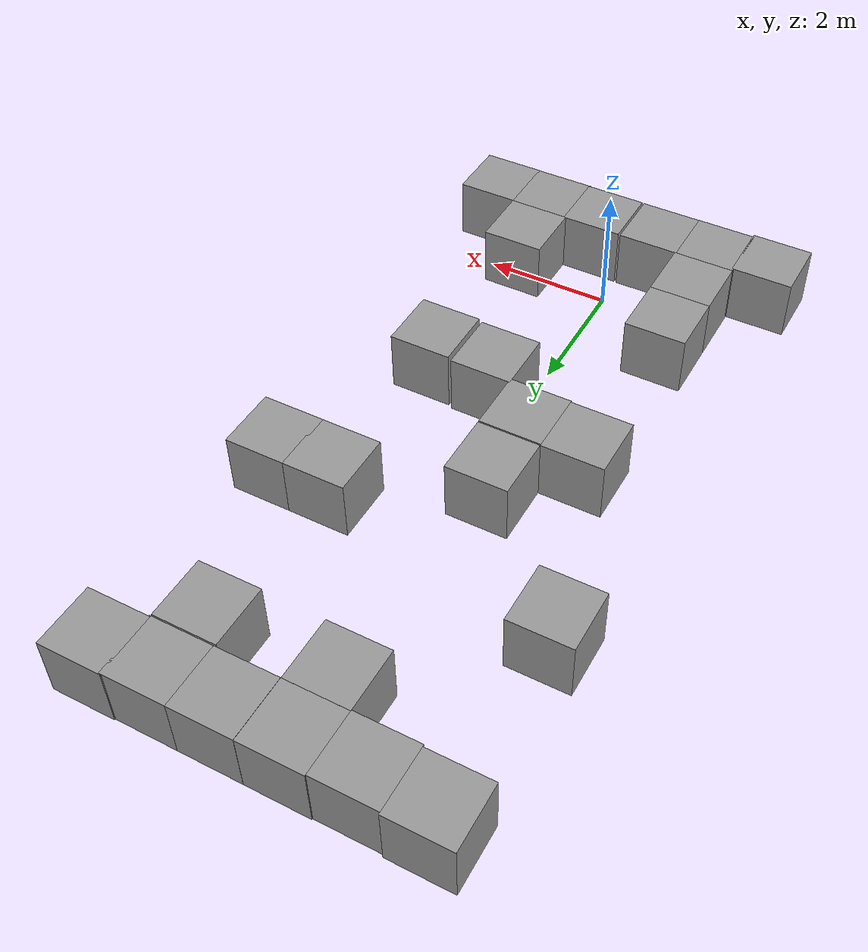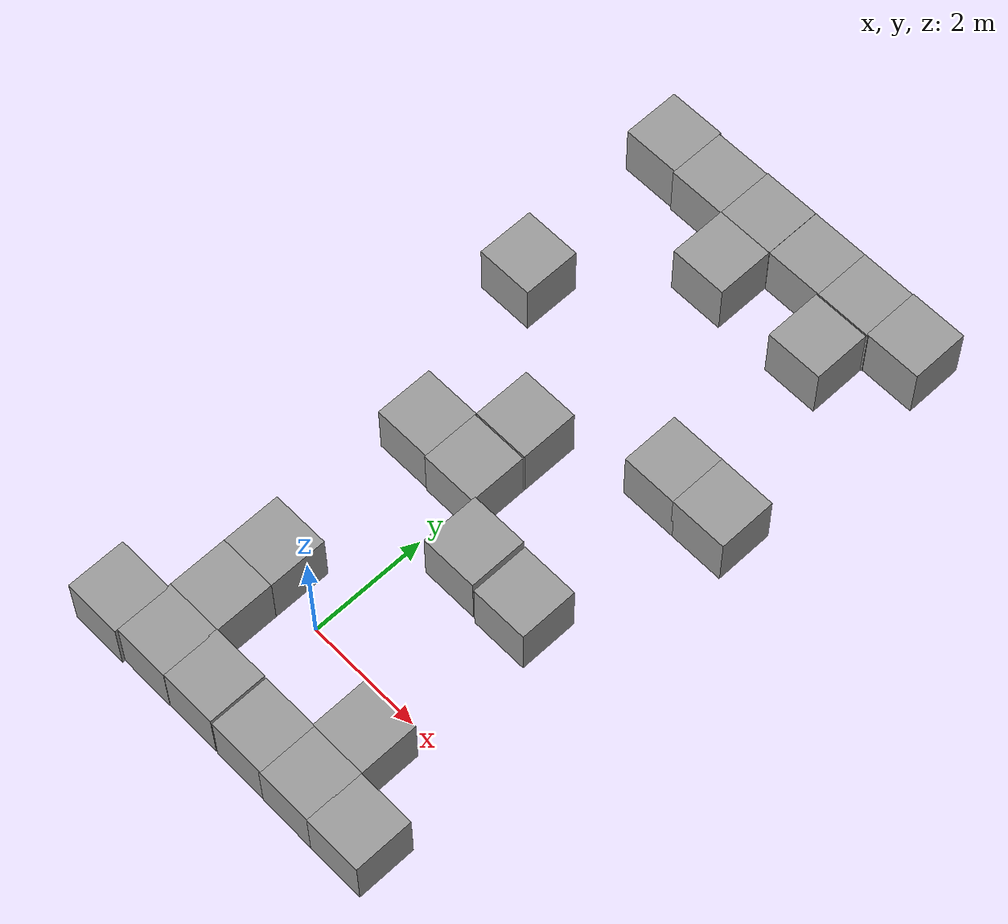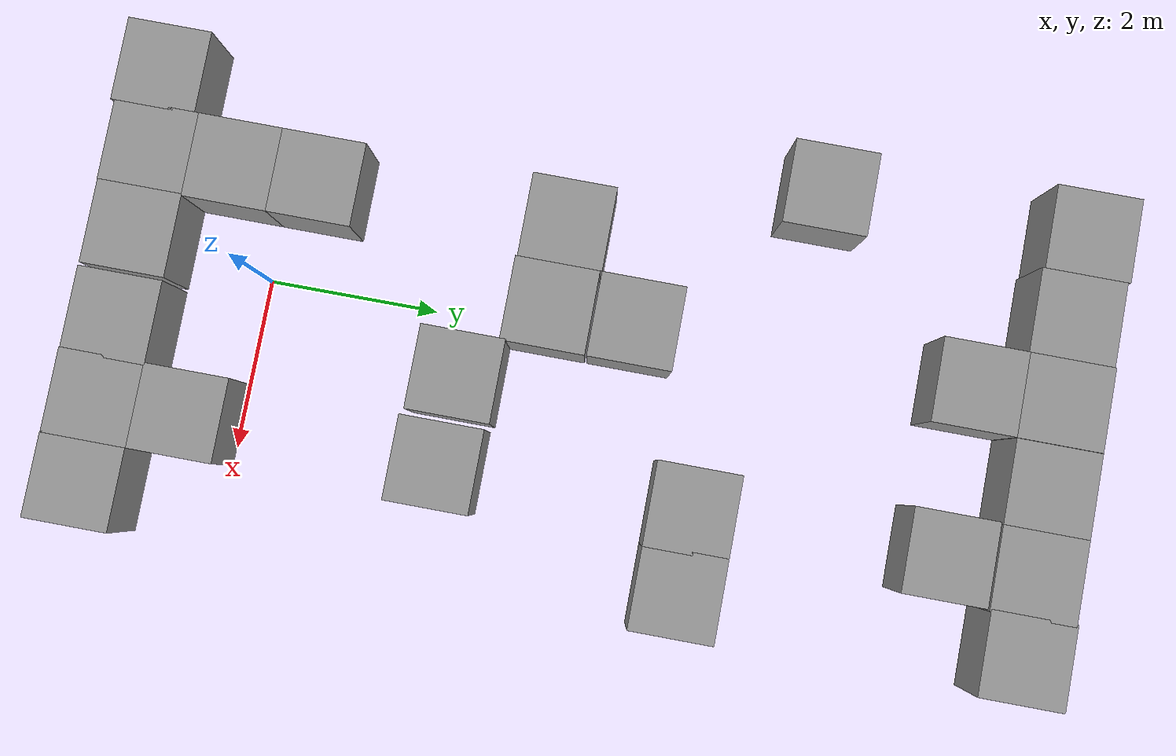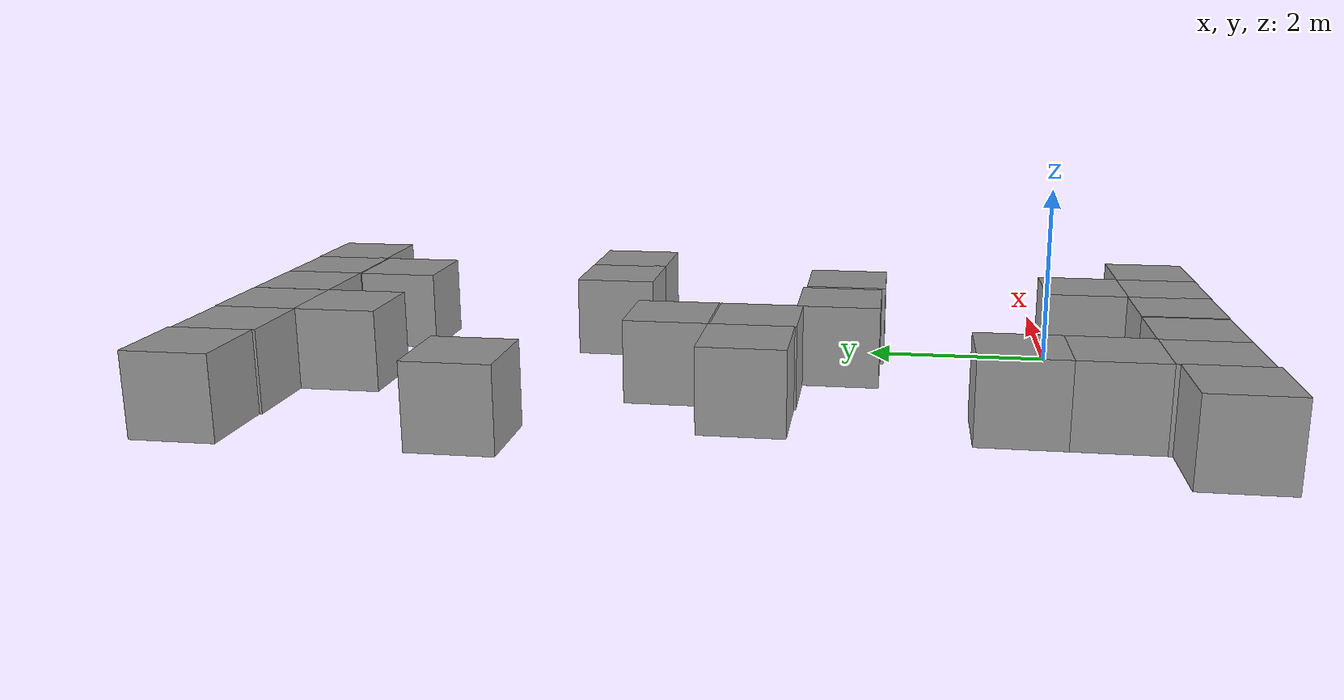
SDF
<sdf version="1.7">
 <model name="maze2.1">
  <link name="link_12">
   <inertial>
    <mass>1</mass>
    <inertia>
     <ixx>0.166667</ixx>
     <ixy>0</ixy>
     <ixz>0</ixz>
     <iyy>0.166667</iyy>
     <iyz>0</iyz>
     <izz>0.166667</izz>
    </inertia>
   </inertial>
   <pose>0.709748 2.40314 0 0 -0 0</pose>
   <visual name="visual">
    <geometry><box><size>1 1 1</size></box></geometry>
    <material>
     <lighting>1</lighting>
     <script><uri>file://media/materials/scripts/gazebo.material</uri><name>Gazebo/Grey</name></script>
     <shader type="pixel"/>
    </material>
   </visual>
   <collision name="collision">
    <geometry><box><size>1 1 1</size></box></geometry>
    <surface>
     <friction>
      <ode><mu>1</mu><mu2>1</mu2><fdir1>0 0 0</fdir1><slip1>0</slip1><slip2>0</slip2></ode>
      <torsional>
       <coefficient>1</coefficient>
       <patch_radius>0</patch_radius>
       <surface_radius>0</surface_radius>
       <use_patch_radius>1</use_patch_radius>
       <ode><slip>0</slip></ode>
      </torsional>
     </friction>
     <bounce><restitution_coefficient>0</restitution_coefficient><threshold>1e+06</threshold></bounce>
     <contact>
      <collide_without_contact>0</collide_without_contact>
      <collide_without_contact_bitmask>1</collide_without_contact_bitmask>
      <collide_bitmask>1</collide_bitmask>
      <ode>
       <soft_cfm>0</soft_cfm>
       <soft_erp>0.2</soft_erp>
       <kp>1e+13</kp>
       <kd>1</kd>
       <max_vel>0.01</max_vel>
       <min_depth>0</min_depth>
      </ode>
      <bullet>
       <split_impulse>1</split_impulse>
       <split_impulse_penetration_threshold>-0.01</split_impulse_penetration_threshold>
       <soft_cfm>0</soft_cfm>
       <soft_erp>0.2</soft_erp>
       <kp>1e+13</kp>
       <kd>1</kd>
      </bullet>
     </contact>
    </surface>
   </collision>
  </link>
  <link name="link_1_clone_10">
   <inertial>
    <mass>1</mass>
    <inertia>
     <ixx>0.166667</ixx>
     <ixy>0</ixy>
     <ixz>0</ixz>
     <iyy>0.166667</iyy>
     <iyz>0</iyz>
     <izz>0.166667</izz>
    </inertia>
   </inertial>
   <pose>-2.24618 9.38555 0 0 -0 0</pose>
   <visual name="visual">
    <geometry><box><size>1 1 1</size></box></geometry>
    <material>
     <lighting>1</lighting>
     <script><uri>file://media/materials/scripts/gazebo.material</uri><name>Gazebo/Grey</name></script>
     <shader type="pixel"><normal_map>__default__</normal_map></shader>
     <ambient>0.3 0.3 0.3 1</ambient>
     <diffuse>0.7 0.7 0.7 1</diffuse>
     <specular>0.01 0.01 0.01 1</specular>
     <emissive>0 0 0 1</emissive>
    </material>
   </visual>
   <collision name="collision">
    <geometry><box><size>1 1 1</size></box></geometry>
    <surface>
     <friction>
      <ode><mu>1</mu><mu2>1</mu2><fdir1>0 0 0</fdir1><slip1>0</slip1><slip2>0</slip2></ode>
      <torsional>
       <coefficient>1</coefficient>
       <patch_radius>0</patch_radius>
       <surface_radius>0</surface_radius>
       <use_patch_radius>1</use_patch_radius>
       <ode><slip>0</slip></ode>
      </torsional>
     </friction>
     <bounce><restitution_coefficient>0</restitution_coefficient><threshold>1e+06</threshold></bounce>
     <contact>
      <collide_without_contact>0</collide_without_contact>
      <collide_without_contact_bitmask>1</collide_without_contact_bitmask>
      <collide_bitmask>1</collide_bitmask>
      <ode>
       <soft_cfm>0</soft_cfm>
       <soft_erp>0.2</soft_erp>
       <kp>1e+13</kp>
       <kd>1</kd>
       <max_vel>0.01</max_vel>
       <min_depth>0</min_depth>
      </ode>
      <bullet>
       <split_impulse>1</split_impulse>
       <split_impulse_penetration_threshold>-0.01</split_impulse_penetration_threshold>
       <soft_cfm>0</soft_cfm>
       <soft_erp>0.2</soft_erp>
       <kp>1e+13</kp>
       <kd>1</kd>
      </bullet>
     </contact>
    </surface>
   </collision>
  </link>
  <link name="link_1_clone_103">
   <inertial>
    <mass>1</mass>
    <inertia>
     <ixx>0.166667</ixx>
     <ixy>0</ixy>
     <ixz>0</ixz>
     <iyy>0.166667</iyy>
     <iyz>0</iyz>
     <izz>0.166667</izz>
    </inertia>
   </inertial>
   <pose>-1.26838 3.35174 0 0 -0 0</pose>
   <visual name="visual">
    <geometry><box><size>1 1 1</size></box></geometry>
    <material>
     <lighting>1</lighting>
     <script><uri>file://media/materials/scripts/gazebo.material</uri><name>Gazebo/Grey</name></script>
     <shader type="pixel"><normal_map>__default__</normal_map></shader>
     <ambient>0.3 0.3 0.3 1</ambient>
     <diffuse>0.7 0.7 0.7 1</diffuse>
     <specular>0.01 0.01 0.01 1</specular>
     <emissive>0 0 0 1</emissive>
    </material>
   </visual>
   <collision name="collision">
    <geometry><box><size>1 1 1</size></box></geometry>
    <surface>
     <friction>
      <ode><mu>1</mu><mu2>1</mu2><fdir1>0 0 0</fdir1><slip1>0</slip1><slip2>0</slip2></ode>
      <torsional>
       <coefficient>1</coefficient>
       <patch_radius>0</patch_radius>
       <surface_radius>0</surface_radius>
       <use_patch_radius>1</use_patch_radius>
       <ode><slip>0</slip></ode>
      </torsional>
     </friction>
     <bounce><restitution_coefficient>0</restitution_coefficient><threshold>1e+06</threshold></bounce>
     <contact>
      <collide_without_contact>0</collide_without_contact>
      <collide_without_contact_bitmask>1</collide_without_contact_bitmask>
      <collide_bitmask>1</collide_bitmask>
      <ode>
       <soft_cfm>0</soft_cfm>
       <soft_erp>0.2</soft_erp>
       <kp>1e+13</kp>
       <kd>1</kd>
       <max_vel>0.01</max_vel>
       <min_depth>0</min_depth>
      </ode>
      <bullet>
       <split_impulse>1</split_impulse>
       <split_impulse_penetration_threshold>-0.01</split_impulse_penetration_threshold>
       <soft_cfm>0</soft_cfm>
       <soft_erp>0.2</soft_erp>
       <kp>1e+13</kp>
       <kd>1</kd>
      </bullet>
     </contact>
    </surface>
   </collision>
  </link>
  <link name="link_1_clone_142">
   <inertial>
    <mass>1</mass>
    <inertia>
     <ixx>0.166667</ixx>
     <ixy>0</ixy>
     <ixz>0</ixz>
     <iyy>0.166667</iyy>
     <iyz>0</iyz>
     <izz>0.166667</izz>
    </inertia>
   </inertial>
   <pose>1.77957 2.35891 0 0 -0 0</pose>
   <visual name="visual">
    <geometry><box><size>1 1 1</size></box></geometry>
    <material>
     <lighting>1</lighting>
     <script><uri>file://media/materials/scripts/gazebo.material</uri><name>Gazebo/Grey</name></script>
     <shader type="pixel"><normal_map>__default__</normal_map></shader>
     <ambient>0.3 0.3 0.3 1</ambient>
     <diffuse>0.7 0.7 0.7 1</diffuse>
     <specular>0.01 0.01 0.01 1</specular>
     <emissive>0 0 0 1</emissive>
    </material>
   </visual>
   <collision name="collision">
    <geometry><box><size>1 1 1</size></box></geometry>
    <surface>
     <friction>
      <ode><mu>1</mu><mu2>1</mu2><fdir1>0 0 0</fdir1><slip1>0</slip1><slip2>0</slip2></ode>
      <torsional>
       <coefficient>1</coefficient>
       <patch_radius>0</patch_radius>
       <surface_radius>0</surface_radius>
       <use_patch_radius>1</use_patch_radius>
       <ode><slip>0</slip></ode>
      </torsional>
     </friction>
     <bounce><restitution_coefficient>0</restitution_coefficient><threshold>1e+06</threshold></bounce>
     <contact>
      <collide_without_contact>0</collide_without_contact>
      <collide_without_contact_bitmask>1</collide_without_contact_bitmask>
      <collide_bitmask>1</collide_bitmask>
      <ode>
       <soft_cfm>0</soft_cfm>
       <soft_erp>0.2</soft_erp>
       <kp>1e+13</kp>
       <kd>1</kd>
       <max_vel>0.01</max_vel>
       <min_depth>0</min_depth>
      </ode>
      <bullet>
       <split_impulse>1</split_impulse>
       <split_impulse_penetration_threshold>-0.01</split_impulse_penetration_threshold>
       <soft_cfm>0</soft_cfm>
       <soft_erp>0.2</soft_erp>
       <kp>1e+13</kp>
       <kd>1</kd>
      </bullet>
     </contact>
    </surface>
   </collision>
  </link>
  <link name="link_1_clone_143">
   <inertial>
    <mass>1</mass>
    <inertia>
     <ixx>0.166667</ixx>
     <ixy>0</ixy>
     <ixz>0</ixz>
     <iyy>0.166667</iyy>
     <iyz>0</iyz>
     <izz>0.166667</izz>
    </inertia>
   </inertial>
   <pose>-0.268491 3.32959 0 0 -0 0</pose>
   <visual name="visual">
    <geometry><box><size>1 1 1</size></box></geometry>
    <material>
     <lighting>1</lighting>
     <script><uri>file://media/materials/scripts/gazebo.material</uri><name>Gazebo/Grey</name></script>
     <shader type="pixel"><normal_map>__default__</normal_map></shader>
     <ambient>0.3 0.3 0.3 1</ambient>
     <diffuse>0.7 0.7 0.7 1</diffuse>
     <specular>0.01 0.01 0.01 1</specular>
     <emissive>0 0 0 1</emissive>
    </material>
   </visual>
   <collision name="collision">
    <geometry><box><size>1 1 1</size></box></geometry>
    <surface>
     <friction>
      <ode><mu>1</mu><mu2>1</mu2><fdir1>0 0 0</fdir1><slip1>0</slip1><slip2>0</slip2></ode>
      <torsional>
       <coefficient>1</coefficient>
       <patch_radius>0</patch_radius>
       <surface_radius>0</surface_radius>
       <use_patch_radius>1</use_patch_radius>
       <ode><slip>0</slip></ode>
      </torsional>
     </friction>
     <bounce><restitution_coefficient>0</restitution_coefficient><threshold>1e+06</threshold></bounce>
     <contact>
      <collide_without_contact>0</collide_without_contact>
      <collide_without_contact_bitmask>1</collide_without_contact_bitmask>
      <collide_bitmask>1</collide_bitmask>
      <ode>
       <soft_cfm>0</soft_cfm>
       <soft_erp>0.2</soft_erp>
       <kp>1e+13</kp>
       <kd>1</kd>
       <max_vel>0.01</max_vel>
       <min_depth>0</min_depth>
      </ode>
      <bullet>
       <split_impulse>1</split_impulse>
       <split_impulse_penetration_threshold>-0.01</split_impulse_penetration_threshold>
       <soft_cfm>0</soft_cfm>
       <soft_erp>0.2</soft_erp>
       <kp>1e+13</kp>
       <kd>1</kd>
      </bullet>
     </contact>
    </surface>
   </collision>
  </link>
  <link name="link_1_clone_169">
   <inertial>
    <mass>1</mass>
    <inertia>
     <ixx>0.166667</ixx>
     <ixy>0</ixy>
     <ixz>0</ixz>
     <iyy>0.166667</iyy>
     <iyz>0</iyz>
     <izz>0.166667</izz>
    </inertia>
   </inertial>
   <pose>2.72353 -1.64181 0 0 -0 0</pose>
   <visual name="visual">
    <geometry><box><size>1 1 1</size></box></geometry>
    <material>
     <lighting>1</lighting>
     <script><uri>file://media/materials/scripts/gazebo.material</uri><name>Gazebo/Grey</name></script>
     <shader type="pixel"><normal_map>__default__</normal_map></shader>
     <ambient>0.3 0.3 0.3 1</ambient>
     <diffuse>0.7 0.7 0.7 1</diffuse>
     <specular>0.01 0.01 0.01 1</specular>
     <emissive>0 0 0 1</emissive>
    </material>
   </visual>
   <collision name="collision">
    <geometry><box><size>1 1 1</size></box></geometry>
    <surface>
     <friction>
      <ode><mu>1</mu><mu2>1</mu2><fdir1>0 0 0</fdir1><slip1>0</slip1><slip2>0</slip2></ode>
      <torsional>
       <coefficient>1</coefficient>
       <patch_radius>0</patch_radius>
       <surface_radius>0</surface_radius>
       <use_patch_radius>1</use_patch_radius>
       <ode><slip>0</slip></ode>
      </torsional>
     </friction>
     <bounce><restitution_coefficient>0</restitution_coefficient><threshold>1e+06</threshold></bounce>
     <contact>
      <collide_without_contact>0</collide_without_contact>
      <collide_without_contact_bitmask>1</collide_without_contact_bitmask>
      <collide_bitmask>1</collide_bitmask>
      <ode>
       <soft_cfm>0</soft_cfm>
       <soft_erp>0.2</soft_erp>
       <kp>1e+13</kp>
       <kd>1</kd>
       <max_vel>0.01</max_vel>
       <min_depth>0</min_depth>
      </ode>
      <bullet>
       <split_impulse>1</split_impulse>
       <split_impulse_penetration_threshold>-0.01</split_impulse_penetration_threshold>
       <soft_cfm>0</soft_cfm>
       <soft_erp>0.2</soft_erp>
       <kp>1e+13</kp>
       <kd>1</kd>
      </bullet>
     </contact>
    </surface>
   </collision>
  </link>
  <link name="link_1_clone_173">
   <inertial>
    <mass>1</mass>
    <inertia>
     <ixx>0.166667</ixx>
     <ixy>0</ixy>
     <ixz>0</ixz>
     <iyy>0.166667</iyy>
     <iyz>0</iyz>
     <izz>0.166667</izz>
    </inertia>
   </inertial>
   <pose>0.76896 -1.62668 0 0 -0 0</pose>
   <visual name="visual">
    <geometry><box><size>1 1 1</size></box></geometry>
    <material>
     <lighting>1</lighting>
     <script><uri>file://media/materials/scripts/gazebo.material</uri><name>Gazebo/Grey</name></script>
     <shader type="pixel"><normal_map>__default__</normal_map></shader>
     <ambient>0.3 0.3 0.3 1</ambient>
     <diffuse>0.7 0.7 0.7 1</diffuse>
     <specular>0.01 0.01 0.01 1</specular>
     <emissive>0 0 0 1</emissive>
    </material>
   </visual>
   <collision name="collision">
    <geometry><box><size>1 1 1</size></box></geometry>
    <surface>
     <friction>
      <ode><mu>1</mu><mu2>1</mu2><fdir1>0 0 0</fdir1><slip1>0</slip1><slip2>0</slip2></ode>
      <torsional>
       <coefficient>1</coefficient>
       <patch_radius>0</patch_radius>
       <surface_radius>0</surface_radius>
       <use_patch_radius>1</use_patch_radius>
       <ode><slip>0</slip></ode>
      </torsional>
     </friction>
     <bounce><restitution_coefficient>0</restitution_coefficient><threshold>1e+06</threshold></bounce>
     <contact>
      <collide_without_contact>0</collide_without_contact>
      <collide_without_contact_bitmask>1</collide_without_contact_bitmask>
      <collide_bitmask>1</collide_bitmask>
      <ode>
       <soft_cfm>0</soft_cfm>
       <soft_erp>0.2</soft_erp>
       <kp>1e+13</kp>
       <kd>1</kd>
       <max_vel>0.01</max_vel>
       <min_depth>0</min_depth>
      </ode>
      <bullet>
       <split_impulse>1</split_impulse>
       <split_impulse_penetration_threshold>-0.01</split_impulse_penetration_threshold>
       <soft_cfm>0</soft_cfm>
       <soft_erp>0.2</soft_erp>
       <kp>1e+13</kp>
       <kd>1</kd>
      </bullet>
     </contact>
    </surface>
   </collision>
  </link>
  <link name="link_1_clone_175">
   <inertial>
    <mass>1</mass>
    <inertia>
     <ixx>0.166667</ixx>
     <ixy>0</ixy>
     <ixz>0</ixz>
     <iyy>0.166667</iyy>
     <iyz>0</iyz>
     <izz>0.166667</izz>
    </inertia>
   </inertial>
   <pose>-0.267475 -1.62021 0 0 -0 0</pose>
   <visual name="visual">
    <geometry><box><size>1 1 1</size></box></geometry>
    <material>
     <lighting>1</lighting>
     <script><uri>file://media/materials/scripts/gazebo.material</uri><name>Gazebo/Grey</name></script>
     <shader type="pixel"><normal_map>__default__</normal_map></shader>
     <ambient>0.3 0.3 0.3 1</ambient>
     <diffuse>0.7 0.7 0.7 1</diffuse>
     <specular>0.01 0.01 0.01 1</specular>
     <emissive>0 0 0 1</emissive>
    </material>
   </visual>
   <collision name="collision">
    <geometry><box><size>1 1 1</size></box></geometry>
    <surface>
     <friction>
      <ode><mu>1</mu><mu2>1</mu2><fdir1>0 0 0</fdir1><slip1>0</slip1><slip2>0</slip2></ode>
      <torsional>
       <coefficient>1</coefficient>
       <patch_radius>0</patch_radius>
       <surface_radius>0</surface_radius>
       <use_patch_radius>1</use_patch_radius>
       <ode><slip>0</slip></ode>
      </torsional>
     </friction>
     <bounce><restitution_coefficient>0</restitution_coefficient><threshold>1e+06</threshold></bounce>
     <contact>
      <collide_without_contact>0</collide_without_contact>
      <collide_without_contact_bitmask>1</collide_without_contact_bitmask>
      <collide_bitmask>1</collide_bitmask>
      <ode>
       <soft_cfm>0</soft_cfm>
       <soft_erp>0.2</soft_erp>
       <kp>1e+13</kp>
       <kd>1</kd>
       <max_vel>0.01</max_vel>
       <min_depth>0</min_depth>
      </ode>
      <bullet>
       <split_impulse>1</split_impulse>
       <split_impulse_penetration_threshold>-0.01</split_impulse_penetration_threshold>
       <soft_cfm>0</soft_cfm>
       <soft_erp>0.2</soft_erp>
       <kp>1e+13</kp>
       <kd>1</kd>
      </bullet>
     </contact>
    </surface>
   </collision>
  </link>
  <link name="link_1_clone_176">
   <inertial>
    <mass>1</mass>
    <inertia>
     <ixx>0.166667</ixx>
     <ixy>0</ixy>
     <ixz>0</ixz>
     <iyy>0.166667</iyy>
     <iyz>0</iyz>
     <izz>0.166667</izz>
    </inertia>
   </inertial>
   <pose>-2.21968 -1.67311 0 0 -0 0</pose>
   <visual name="visual">
    <geometry><box><size>1 1 1</size></box></geometry>
    <material>
     <lighting>1</lighting>
     <script><uri>file://media/materials/scripts/gazebo.material</uri><name>Gazebo/Grey</name></script>
     <shader type="pixel"><normal_map>__default__</normal_map></shader>
     <ambient>0.3 0.3 0.3 1</ambient>
     <diffuse>0.7 0.7 0.7 1</diffuse>
     <specular>0.01 0.01 0.01 1</specular>
     <emissive>0 0 0 1</emissive>
    </material>
   </visual>
   <collision name="collision">
    <geometry><box><size>1 1 1</size></box></geometry>
    <surface>
     <friction>
      <ode><mu>1</mu><mu2>1</mu2><fdir1>0 0 0</fdir1><slip1>0</slip1><slip2>0</slip2></ode>
      <torsional>
       <coefficient>1</coefficient>
       <patch_radius>0</patch_radius>
       <surface_radius>0</surface_radius>
       <use_patch_radius>1</use_patch_radius>
       <ode><slip>0</slip></ode>
      </torsional>
     </friction>
     <bounce><restitution_coefficient>0</restitution_coefficient><threshold>1e+06</threshold></bounce>
     <contact>
      <collide_without_contact>0</collide_without_contact>
      <collide_without_contact_bitmask>1</collide_without_contact_bitmask>
      <collide_bitmask>1</collide_bitmask>
      <ode>
       <soft_cfm>0</soft_cfm>
       <soft_erp>0.2</soft_erp>
       <kp>1e+13</kp>
       <kd>1</kd>
       <max_vel>0.01</max_vel>
       <min_depth>0</min_depth>
      </ode>
      <bullet>
       <split_impulse>1</split_impulse>
       <split_impulse_penetration_threshold>-0.01</split_impulse_penetration_threshold>
       <soft_cfm>0</soft_cfm>
       <soft_erp>0.2</soft_erp>
       <kp>1e+13</kp>
       <kd>1</kd>
      </bullet>
     </contact>
    </surface>
   </collision>
  </link>
  <link name="link_1_clone_178">
   <inertial>
    <mass>1</mass>
    <inertia>
     <ixx>0.166667</ixx>
     <ixy>0</ixy>
     <ixz>0</ixz>
     <iyy>0.166667</iyy>
     <iyz>0</iyz>
     <izz>0.166667</izz>
    </inertia>
   </inertial>
   <pose>1.73694 -0.636524 0 0 -0 0</pose>
   <visual name="visual">
    <geometry><box><size>1 1 1</size></box></geometry>
    <material>
     <lighting>1</lighting>
     <script><uri>file://media/materials/scripts/gazebo.material</uri><name>Gazebo/Grey</name></script>
     <shader type="pixel"><normal_map>__default__</normal_map></shader>
     <ambient>0.3 0.3 0.3 1</ambient>
     <diffuse>0.7 0.7 0.7 1</diffuse>
     <specular>0.01 0.01 0.01 1</specular>
     <emissive>0 0 0 1</emissive>
    </material>
   </visual>
   <collision name="collision">
    <geometry><box><size>1 1 1</size></box></geometry>
    <surface>
     <friction>
      <ode><mu>1</mu><mu2>1</mu2><fdir1>0 0 0</fdir1><slip1>0</slip1><slip2>0</slip2></ode>
      <torsional>
       <coefficient>1</coefficient>
       <patch_radius>0</patch_radius>
       <surface_radius>0</surface_radius>
       <use_patch_radius>1</use_patch_radius>
       <ode><slip>0</slip></ode>
      </torsional>
     </friction>
     <bounce><restitution_coefficient>0</restitution_coefficient><threshold>1e+06</threshold></bounce>
     <contact>
      <collide_without_contact>0</collide_without_contact>
      <collide_without_contact_bitmask>1</collide_without_contact_bitmask>
      <collide_bitmask>1</collide_bitmask>
      <ode>
       <soft_cfm>0</soft_cfm>
       <soft_erp>0.2</soft_erp>
       <kp>1e+13</kp>
       <kd>1</kd>
       <max_vel>0.01</max_vel>
       <min_depth>0</min_depth>
      </ode>
      <bullet>
       <split_impulse>1</split_impulse>
       <split_impulse_penetration_threshold>-0.01</split_impulse_penetration_threshold>
       <soft_cfm>0</soft_cfm>
       <soft_erp>0.2</soft_erp>
       <kp>1e+13</kp>
       <kd>1</kd>
      </bullet>
     </contact>
    </surface>
   </collision>
  </link>
  <link name="link_1_clone_179">
   <inertial>
    <mass>1</mass>
    <inertia>
     <ixx>0.166667</ixx>
     <ixy>0</ixy>
     <ixz>0</ixz>
     <iyy>0.166667</iyy>
     <iyz>0</iyz>
     <izz>0.166667</izz>
    </inertia>
   </inertial>
   <pose>1.73694 -1.63652 0 0 -0 0</pose>
   <visual name="visual">
    <geometry><box><size>1 1 1</size></box></geometry>
    <material>
     <lighting>1</lighting>
     <script><uri>file://media/materials/scripts/gazebo.material</uri><name>Gazebo/Grey</name></script>
     <shader type="pixel"><normal_map>__default__</normal_map></shader>
     <ambient>0.3 0.3 0.3 1</ambient>
     <diffuse>0.7 0.7 0.7 1</diffuse>
     <specular>0.01 0.01 0.01 1</specular>
     <emissive>0 0 0 1</emissive>
    </material>
   </visual>
   <collision name="collision">
    <geometry><box><size>1 1 1</size></box></geometry>
    <surface>
     <friction>
      <ode><mu>1</mu><mu2>1</mu2><fdir1>0 0 0</fdir1><slip1>0</slip1><slip2>0</slip2></ode>
      <torsional>
       <coefficient>1</coefficient>
       <patch_radius>0</patch_radius>
       <surface_radius>0</surface_radius>
       <use_patch_radius>1</use_patch_radius>
       <ode><slip>0</slip></ode>
      </torsional>
     </friction>
     <bounce><restitution_coefficient>0</restitution_coefficient><threshold>1e+06</threshold></bounce>
     <contact>
      <collide_without_contact>0</collide_without_contact>
      <collide_without_contact_bitmask>1</collide_without_contact_bitmask>
      <collide_bitmask>1</collide_bitmask>
      <ode>
       <soft_cfm>0</soft_cfm>
       <soft_erp>0.2</soft_erp>
       <kp>1e+13</kp>
       <kd>1</kd>
       <max_vel>0.01</max_vel>
       <min_depth>0</min_depth>
      </ode>
      <bullet>
       <split_impulse>1</split_impulse>
       <split_impulse_penetration_threshold>-0.01</split_impulse_penetration_threshold>
       <soft_cfm>0</soft_cfm>
       <soft_erp>0.2</soft_erp>
       <kp>1e+13</kp>
       <kd>1</kd>
      </bullet>
     </contact>
    </surface>
   </collision>
  </link>
  <link name="link_1_clone_180">
   <inertial>
    <mass>1</mass>
    <inertia>
     <ixx>0.166667</ixx>
     <ixy>0</ixy>
     <ixz>0</ixz>
     <iyy>0.166667</iyy>
     <iyz>0</iyz>
     <izz>0.166667</izz>
    </inertia>
   </inertial>
   <pose>-1.24618 0.374651 0 0 -0 0</pose>
   <visual name="visual">
    <geometry><box><size>1 1 1</size></box></geometry>
    <material>
     <lighting>1</lighting>
     <script><uri>file://media/materials/scripts/gazebo.material</uri><name>Gazebo/Grey</name></script>
     <shader type="pixel"><normal_map>__default__</normal_map></shader>
     <ambient>0.3 0.3 0.3 1</ambient>
     <diffuse>0.7 0.7 0.7 1</diffuse>
     <specular>0.01 0.01 0.01 1</specular>
     <emissive>0 0 0 1</emissive>
    </material>
   </visual>
   <collision name="collision">
    <geometry><box><size>1 1 1</size></box></geometry>
    <surface>
     <friction>
      <ode><mu>1</mu><mu2>1</mu2><fdir1>0 0 0</fdir1><slip1>0</slip1><slip2>0</slip2></ode>
      <torsional>
       <coefficient>1</coefficient>
       <patch_radius>0</patch_radius>
       <surface_radius>0</surface_radius>
       <use_patch_radius>1</use_patch_radius>
       <ode><slip>0</slip></ode>
      </torsional>
     </friction>
     <bounce><restitution_coefficient>0</restitution_coefficient><threshold>1e+06</threshold></bounce>
     <contact>
      <collide_without_contact>0</collide_without_contact>
      <collide_without_contact_bitmask>1</collide_without_contact_bitmask>
      <collide_bitmask>1</collide_bitmask>
      <ode>
       <soft_cfm>0</soft_cfm>
       <soft_erp>0.2</soft_erp>
       <kp>1e+13</kp>
       <kd>1</kd>
       <max_vel>0.01</max_vel>
       <min_depth>0</min_depth>
      </ode>
      <bullet>
       <split_impulse>1</split_impulse>
       <split_impulse_penetration_threshold>-0.01</split_impulse_penetration_threshold>
       <soft_cfm>0</soft_cfm>
       <soft_erp>0.2</soft_erp>
       <kp>1e+13</kp>
       <kd>1</kd>
      </bullet>
     </contact>
    </surface>
   </collision>
  </link>
  <link name="link_1_clone_181">
   <inertial>
    <mass>1</mass>
    <inertia>
     <ixx>0.166667</ixx>
     <ixy>0</ixy>
     <ixz>0</ixz>
     <iyy>0.166667</iyy>
     <iyz>0</iyz>
     <izz>0.166667</izz>
    </inertia>
   </inertial>
   <pose>-1.24618 -0.625349 0 0 -0 0</pose>
   <visual name="visual">
    <geometry><box><size>1 1 1</size></box></geometry>
    <material>
     <lighting>1</lighting>
     <script><uri>file://media/materials/scripts/gazebo.material</uri><name>Gazebo/Grey</name></script>
     <shader type="pixel"><normal_map>__default__</normal_map></shader>
     <ambient>0.3 0.3 0.3 1</ambient>
     <diffuse>0.7 0.7 0.7 1</diffuse>
     <specular>0.01 0.01 0.01 1</specular>
     <emissive>0 0 0 1</emissive>
    </material>
   </visual>
   <collision name="collision">
    <geometry><box><size>1 1 1</size></box></geometry>
    <surface>
     <friction>
      <ode><mu>1</mu><mu2>1</mu2><fdir1>0 0 0</fdir1><slip1>0</slip1><slip2>0</slip2></ode>
      <torsional>
       <coefficient>1</coefficient>
       <patch_radius>0</patch_radius>
       <surface_radius>0</surface_radius>
       <use_patch_radius>1</use_patch_radius>
       <ode><slip>0</slip></ode>
      </torsional>
     </friction>
     <bounce><restitution_coefficient>0</restitution_coefficient><threshold>1e+06</threshold></bounce>
     <contact>
      <collide_without_contact>0</collide_without_contact>
      <collide_without_contact_bitmask>1</collide_without_contact_bitmask>
      <collide_bitmask>1</collide_bitmask>
      <ode>
       <soft_cfm>0</soft_cfm>
       <soft_erp>0.2</soft_erp>
       <kp>1e+13</kp>
       <kd>1</kd>
       <max_vel>0.01</max_vel>
       <min_depth>0</min_depth>
      </ode>
      <bullet>
       <split_impulse>1</split_impulse>
       <split_impulse_penetration_threshold>-0.01</split_impulse_penetration_threshold>
       <soft_cfm>0</soft_cfm>
       <soft_erp>0.2</soft_erp>
       <kp>1e+13</kp>
       <kd>1</kd>
      </bullet>
     </contact>
    </surface>
   </collision>
  </link>
  <link name="link_1_clone_182">
   <inertial>
    <mass>1</mass>
    <inertia>
     <ixx>0.166667</ixx>
     <ixy>0</ixy>
     <ixz>0</ixz>
     <iyy>0.166667</iyy>
     <iyz>0</iyz>
     <izz>0.166667</izz>
    </inertia>
   </inertial>
   <pose>-1.24618 -1.62535 0 0 -0 0</pose>
   <visual name="visual">
    <geometry><box><size>1 1 1</size></box></geometry>
    <material>
     <lighting>1</lighting>
     <script><uri>file://media/materials/scripts/gazebo.material</uri><name>Gazebo/Grey</name></script>
     <shader type="pixel"><normal_map>__default__</normal_map></shader>
     <ambient>0.3 0.3 0.3 1</ambient>
     <diffuse>0.7 0.7 0.7 1</diffuse>
     <specular>0.01 0.01 0.01 1</specular>
     <emissive>0 0 0 1</emissive>
    </material>
   </visual>
   <collision name="collision">
    <geometry><box><size>1 1 1</size></box></geometry>
    <surface>
     <friction>
      <ode><mu>1</mu><mu2>1</mu2><fdir1>0 0 0</fdir1><slip1>0</slip1><slip2>0</slip2></ode>
      <torsional>
       <coefficient>1</coefficient>
       <patch_radius>0</patch_radius>
       <surface_radius>0</surface_radius>
       <use_patch_radius>1</use_patch_radius>
       <ode><slip>0</slip></ode>
      </torsional>
     </friction>
     <bounce><restitution_coefficient>0</restitution_coefficient><threshold>1e+06</threshold></bounce>
     <contact>
      <collide_without_contact>0</collide_without_contact>
      <collide_without_contact_bitmask>1</collide_without_contact_bitmask>
      <collide_bitmask>1</collide_bitmask>
      <ode>
       <soft_cfm>0</soft_cfm>
       <soft_erp>0.2</soft_erp>
       <kp>1e+13</kp>
       <kd>1</kd>
       <max_vel>0.01</max_vel>
       <min_depth>0</min_depth>
      </ode>
      <bullet>
       <split_impulse>1</split_impulse>
       <split_impulse_penetration_threshold>-0.01</split_impulse_penetration_threshold>
       <soft_cfm>0</soft_cfm>
       <soft_erp>0.2</soft_erp>
       <kp>1e+13</kp>
       <kd>1</kd>
      </bullet>
     </contact>
    </surface>
   </collision>
  </link>
  <link name="link_1_clone_5">
   <inertial>
    <mass>1</mass>
    <inertia>
     <ixx>0.166667</ixx>
     <ixy>0</ixy>
     <ixz>0</ixz>
     <iyy>0.166667</iyy>
     <iyz>0</iyz>
     <izz>0.166667</izz>
    </inertia>
   </inertial>
   <pose>2.72309 9.38541 0 0 -0 0</pose>
   <visual name="visual">
    <geometry><box><size>1 1 1</size></box></geometry>
    <material>
     <lighting>1</lighting>
     <script><uri>file://media/materials/scripts/gazebo.material</uri><name>Gazebo/Grey</name></script>
     <shader type="pixel"><normal_map>__default__</normal_map></shader>
     <ambient>0.3 0.3 0.3 1</ambient>
     <diffuse>0.7 0.7 0.7 1</diffuse>
     <specular>0.01 0.01 0.01 1</specular>
     <emissive>0 0 0 1</emissive>
    </material>
   </visual>
   <collision name="collision">
    <geometry><box><size>1 1 1</size></box></geometry>
    <surface>
     <friction>
      <ode><mu>1</mu><mu2>1</mu2><fdir1>0 0 0</fdir1><slip1>0</slip1><slip2>0</slip2></ode>
      <torsional>
       <coefficient>1</coefficient>
       <patch_radius>0</patch_radius>
       <surface_radius>0</surface_radius>
       <use_patch_radius>1</use_patch_radius>
       <ode><slip>0</slip></ode>
      </torsional>
     </friction>
     <bounce><restitution_coefficient>0</restitution_coefficient><threshold>1e+06</threshold></bounce>
     <contact>
      <collide_without_contact>0</collide_without_contact>
      <collide_without_contact_bitmask>1</collide_without_contact_bitmask>
      <collide_bitmask>1</collide_bitmask>
      <ode>
       <soft_cfm>0</soft_cfm>
       <soft_erp>0.2</soft_erp>
       <kp>1e+13</kp>
       <kd>1</kd>
       <max_vel>0.01</max_vel>
       <min_depth>0</min_depth>
      </ode>
      <bullet>
       <split_impulse>1</split_impulse>
       <split_impulse_penetration_threshold>-0.01</split_impulse_penetration_threshold>
       <soft_cfm>0</soft_cfm>
       <soft_erp>0.2</soft_erp>
       <kp>1e+13</kp>
       <kd>1</kd>
      </bullet>
     </contact>
    </surface>
   </collision>
  </link>
  <link name="link_1_clone_6">
   <inertial>
    <mass>1</mass>
    <inertia>
     <ixx>0.166667</ixx>
     <ixy>0</ixy>
     <ixz>0</ixz>
     <iyy>0.166667</iyy>
     <iyz>0</iyz>
     <izz>0.166667</izz>
    </inertia>
   </inertial>
   <pose>1.75382 9.36995 0 0 -0 0</pose>
   <visual name="visual">
    <geometry><box><size>1 1 1</size></box></geometry>
    <material>
     <lighting>1</lighting>
     <script><uri>file://media/materials/scripts/gazebo.material</uri><name>Gazebo/Grey</name></script>
     <shader type="pixel"><normal_map>__default__</normal_map></shader>
     <ambient>0.3 0.3 0.3 1</ambient>
     <diffuse>0.7 0.7 0.7 1</diffuse>
     <specular>0.01 0.01 0.01 1</specular>
     <emissive>0 0 0 1</emissive>
    </material>
   </visual>
   <collision name="collision">
    <geometry><box><size>1 1 1</size></box></geometry>
    <surface>
     <friction>
      <ode><mu>1</mu><mu2>1</mu2><fdir1>0 0 0</fdir1><slip1>0</slip1><slip2>0</slip2></ode>
      <torsional>
       <coefficient>1</coefficient>
       <patch_radius>0</patch_radius>
       <surface_radius>0</surface_radius>
       <use_patch_radius>1</use_patch_radius>
       <ode><slip>0</slip></ode>
      </torsional>
     </friction>
     <bounce><restitution_coefficient>0</restitution_coefficient><threshold>1e+06</threshold></bounce>
     <contact>
      <collide_without_contact>0</collide_without_contact>
      <collide_without_contact_bitmask>1</collide_without_contact_bitmask>
      <collide_bitmask>1</collide_bitmask>
      <ode>
       <soft_cfm>0</soft_cfm>
       <soft_erp>0.2</soft_erp>
       <kp>1e+13</kp>
       <kd>1</kd>
       <max_vel>0.01</max_vel>
       <min_depth>0</min_depth>
      </ode>
      <bullet>
       <split_impulse>1</split_impulse>
       <split_impulse_penetration_threshold>-0.01</split_impulse_penetration_threshold>
       <soft_cfm>0</soft_cfm>
       <soft_erp>0.2</soft_erp>
       <kp>1e+13</kp>
       <kd>1</kd>
      </bullet>
     </contact>
    </surface>
   </collision>
  </link>
  <link name="link_1_clone_7">
   <inertial>
    <mass>1</mass>
    <inertia>
     <ixx>0.166667</ixx>
     <ixy>0</ixy>
     <ixz>0</ixz>
     <iyy>0.166667</iyy>
     <iyz>0</iyz>
     <izz>0.166667</izz>
    </inertia>
   </inertial>
   <pose>0.756526 9.36995 0 0 -0 0</pose>
   <visual name="visual">
    <geometry><box><size>1 1 1</size></box></geometry>
    <material>
     <lighting>1</lighting>
     <script><uri>file://media/materials/scripts/gazebo.material</uri><name>Gazebo/Grey</name></script>
     <shader type="pixel"><normal_map>__default__</normal_map></shader>
     <ambient>0.3 0.3 0.3 1</ambient>
     <diffuse>0.7 0.7 0.7 1</diffuse>
     <specular>0.01 0.01 0.01 1</specular>
     <emissive>0 0 0 1</emissive>
    </material>
   </visual>
   <collision name="collision">
    <geometry><box><size>1 1 1</size></box></geometry>
    <surface>
     <friction>
      <ode><mu>1</mu><mu2>1</mu2><fdir1>0 0 0</fdir1><slip1>0</slip1><slip2>0</slip2></ode>
      <torsional>
       <coefficient>1</coefficient>
       <patch_radius>0</patch_radius>
       <surface_radius>0</surface_radius>
       <use_patch_radius>1</use_patch_radius>
       <ode><slip>0</slip></ode>
      </torsional>
     </friction>
     <bounce><restitution_coefficient>0</restitution_coefficient><threshold>1e+06</threshold></bounce>
     <contact>
      <collide_without_contact>0</collide_without_contact>
      <collide_without_contact_bitmask>1</collide_without_contact_bitmask>
      <collide_bitmask>1</collide_bitmask>
      <ode>
       <soft_cfm>0</soft_cfm>
       <soft_erp>0.2</soft_erp>
       <kp>1e+13</kp>
       <kd>1</kd>
       <max_vel>0.01</max_vel>
       <min_depth>0</min_depth>
      </ode>
      <bullet>
       <split_impulse>1</split_impulse>
       <split_impulse_penetration_threshold>-0.01</split_impulse_penetration_threshold>
       <soft_cfm>0</soft_cfm>
       <soft_erp>0.2</soft_erp>
       <kp>1e+13</kp>
       <kd>1</kd>
      </bullet>
     </contact>
    </surface>
   </collision>
  </link>
  <link name="link_1_clone_8">
   <inertial>
    <mass>1</mass>
    <inertia>
     <ixx>0.166667</ixx>
     <ixy>0</ixy>
     <ixz>0</ixz>
     <iyy>0.166667</iyy>
     <iyz>0</iyz>
     <izz>0.166667</izz>
    </inertia>
   </inertial>
   <pose>-0.246183 9.37024 0 0 -0 0</pose>
   <visual name="visual">
    <geometry><box><size>1 1 1</size></box></geometry>
    <material>
     <lighting>1</lighting>
     <script><uri>file://media/materials/scripts/gazebo.material</uri><name>Gazebo/Grey</name></script>
     <shader type="pixel"><normal_map>__default__</normal_map></shader>
     <ambient>0.3 0.3 0.3 1</ambient>
     <diffuse>0.7 0.7 0.7 1</diffuse>
     <specular>0.01 0.01 0.01 1</specular>
     <emissive>0 0 0 1</emissive>
    </material>
   </visual>
   <collision name="collision">
    <geometry><box><size>1 1 1</size></box></geometry>
    <surface>
     <friction>
      <ode><mu>1</mu><mu2>1</mu2><fdir1>0 0 0</fdir1><slip1>0</slip1><slip2>0</slip2></ode>
      <torsional>
       <coefficient>1</coefficient>
       <patch_radius>0</patch_radius>
       <surface_radius>0</surface_radius>
       <use_patch_radius>1</use_patch_radius>
       <ode><slip>0</slip></ode>
      </torsional>
     </friction>
     <bounce><restitution_coefficient>0</restitution_coefficient><threshold>1e+06</threshold></bounce>
     <contact>
      <collide_without_contact>0</collide_without_contact>
      <collide_without_contact_bitmask>1</collide_without_contact_bitmask>
      <collide_bitmask>1</collide_bitmask>
      <ode>
       <soft_cfm>0</soft_cfm>
       <soft_erp>0.2</soft_erp>
       <kp>1e+13</kp>
       <kd>1</kd>
       <max_vel>0.01</max_vel>
       <min_depth>0</min_depth>
      </ode>
      <bullet>
       <split_impulse>1</split_impulse>
       <split_impulse_penetration_threshold>-0.01</split_impulse_penetration_threshold>
       <soft_cfm>0</soft_cfm>
       <soft_erp>0.2</soft_erp>
       <kp>1e+13</kp>
       <kd>1</kd>
      </bullet>
     </contact>
    </surface>
   </collision>
  </link>
  <link name="link_1_clone_85">
   <inertial>
    <mass>1</mass>
    <inertia>
     <ixx>0.166667</ixx>
     <ixy>0</ixy>
     <ixz>0</ixz>
     <iyy>0.166667</iyy>
     <iyz>0</iyz>
     <izz>0.166667</izz>
    </inertia>
   </inertial>
   <pose>2.71391 5.37165 0 0 -0 0</pose>
   <visual name="visual">
    <geometry><box><size>1 1 1</size></box></geometry>
    <material>
     <lighting>1</lighting>
     <script><uri>file://media/materials/scripts/gazebo.material</uri><name>Gazebo/Grey</name></script>
     <shader type="pixel"><normal_map>__default__</normal_map></shader>
     <ambient>0.3 0.3 0.3 1</ambient>
     <diffuse>0.7 0.7 0.7 1</diffuse>
     <specular>0.01 0.01 0.01 1</specular>
     <emissive>0 0 0 1</emissive>
    </material>
   </visual>
   <collision name="collision">
    <geometry><box><size>1 1 1</size></box></geometry>
    <surface>
     <friction>
      <ode><mu>1</mu><mu2>1</mu2><fdir1>0 0 0</fdir1><slip1>0</slip1><slip2>0</slip2></ode>
      <torsional>
       <coefficient>1</coefficient>
       <patch_radius>0</patch_radius>
       <surface_radius>0</surface_radius>
       <use_patch_radius>1</use_patch_radius>
       <ode><slip>0</slip></ode>
      </torsional>
     </friction>
     <bounce><restitution_coefficient>0</restitution_coefficient><threshold>1e+06</threshold></bounce>
     <contact>
      <collide_without_contact>0</collide_without_contact>
      <collide_without_contact_bitmask>1</collide_without_contact_bitmask>
      <collide_bitmask>1</collide_bitmask>
      <ode>
       <soft_cfm>0</soft_cfm>
       <soft_erp>0.2</soft_erp>
       <kp>1e+13</kp>
       <kd>1</kd>
       <max_vel>0.01</max_vel>
       <min_depth>0</min_depth>
      </ode>
      <bullet>
       <split_impulse>1</split_impulse>
       <split_impulse_penetration_threshold>-0.01</split_impulse_penetration_threshold>
       <soft_cfm>0</soft_cfm>
       <soft_erp>0.2</soft_erp>
       <kp>1e+13</kp>
       <kd>1</kd>
      </bullet>
     </contact>
    </surface>
   </collision>
  </link>
  <link name="link_1_clone_88">
   <inertial>
    <mass>1</mass>
    <inertia>
     <ixx>0.166667</ixx>
     <ixy>0</ixy>
     <ixz>0</ixz>
     <iyy>0.166667</iyy>
     <iyz>0</iyz>
     <izz>0.166667</izz>
    </inertia>
   </inertial>
   <pose>1.75382 5.37165 0 0 -0 0</pose>
   <visual name="visual">
    <geometry><box><size>1 1 1</size></box></geometry>
    <material>
     <lighting>1</lighting>
     <script><uri>file://media/materials/scripts/gazebo.material</uri><name>Gazebo/Grey</name></script>
     <shader type="pixel"><normal_map>__default__</normal_map></shader>
     <ambient>0.3 0.3 0.3 1</ambient>
     <diffuse>0.7 0.7 0.7 1</diffuse>
     <specular>0.01 0.01 0.01 1</specular>
     <emissive>0 0 0 1</emissive>
    </material>
   </visual>
   <collision name="collision">
    <geometry><box><size>1 1 1</size></box></geometry>
    <surface>
     <friction>
      <ode><mu>1</mu><mu2>1</mu2><fdir1>0 0 0</fdir1><slip1>0</slip1><slip2>0</slip2></ode>
      <torsional>
       <coefficient>1</coefficient>
       <patch_radius>0</patch_radius>
       <surface_radius>0</surface_radius>
       <use_patch_radius>1</use_patch_radius>
       <ode><slip>0</slip></ode>
      </torsional>
     </friction>
     <bounce><restitution_coefficient>0</restitution_coefficient><threshold>1e+06</threshold></bounce>
     <contact>
      <collide_without_contact>0</collide_without_contact>
      <collide_without_contact_bitmask>1</collide_without_contact_bitmask>
      <collide_bitmask>1</collide_bitmask>
      <ode>
       <soft_cfm>0</soft_cfm>
       <soft_erp>0.2</soft_erp>
       <kp>1e+13</kp>
       <kd>1</kd>
       <max_vel>0.01</max_vel>
       <min_depth>0</min_depth>
      </ode>
      <bullet>
       <split_impulse>1</split_impulse>
       <split_impulse_penetration_threshold>-0.01</split_impulse_penetration_threshold>
       <soft_cfm>0</soft_cfm>
       <soft_erp>0.2</soft_erp>
       <kp>1e+13</kp>
       <kd>1</kd>
      </bullet>
     </contact>
    </surface>
   </collision>
  </link>
  <link name="link_1_clone_89">
   <inertial>
    <mass>1</mass>
    <inertia>
     <ixx>0.166667</ixx>
     <ixy>0</ixy>
     <ixz>0</ixz>
     <iyy>0.166667</iyy>
     <iyz>0</iyz>
     <izz>0.166667</izz>
    </inertia>
   </inertial>
   <pose>1.73503 8.35012 0 0 -0 0</pose>
   <visual name="visual">
    <geometry><box><size>1 1 1</size></box></geometry>
    <material>
     <lighting>1</lighting>
     <script><uri>file://media/materials/scripts/gazebo.material</uri><name>Gazebo/Grey</name></script>
     <shader type="pixel"><normal_map>__default__</normal_map></shader>
     <ambient>0.3 0.3 0.3 1</ambient>
     <diffuse>0.7 0.7 0.7 1</diffuse>
     <specular>0.01 0.01 0.01 1</specular>
     <emissive>0 0 0 1</emissive>
    </material>
   </visual>
   <collision name="collision">
    <geometry><box><size>1 1 1</size></box></geometry>
    <surface>
     <friction>
      <ode><mu>1</mu><mu2>1</mu2><fdir1>0 0 0</fdir1><slip1>0</slip1><slip2>0</slip2></ode>
      <torsional>
       <coefficient>1</coefficient>
       <patch_radius>0</patch_radius>
       <surface_radius>0</surface_radius>
       <use_patch_radius>1</use_patch_radius>
       <ode><slip>0</slip></ode>
      </torsional>
     </friction>
     <bounce><restitution_coefficient>0</restitution_coefficient><threshold>1e+06</threshold></bounce>
     <contact>
      <collide_without_contact>0</collide_without_contact>
      <collide_without_contact_bitmask>1</collide_without_contact_bitmask>
      <collide_bitmask>1</collide_bitmask>
      <ode>
       <soft_cfm>0</soft_cfm>
       <soft_erp>0.2</soft_erp>
       <kp>1e+13</kp>
       <kd>1</kd>
       <max_vel>0.01</max_vel>
       <min_depth>0</min_depth>
      </ode>
      <bullet>
       <split_impulse>1</split_impulse>
       <split_impulse_penetration_threshold>-0.01</split_impulse_penetration_threshold>
       <soft_cfm>0</soft_cfm>
       <soft_erp>0.2</soft_erp>
       <kp>1e+13</kp>
       <kd>1</kd>
      </bullet>
     </contact>
    </surface>
   </collision>
  </link>
  <link name="link_1_clone_9">
   <inertial>
    <mass>1</mass>
    <inertia>
     <ixx>0.166667</ixx>
     <ixy>0</ixy>
     <ixz>0</ixz>
     <iyy>0.166667</iyy>
     <iyz>0</iyz>
     <izz>0.166667</izz>
    </inertia>
   </inertial>
   <pose>-1.24618 9.35479 0 0 -0 0</pose>
   <visual name="visual">
    <geometry><box><size>1 1 1</size></box></geometry>
    <material>
     <lighting>1</lighting>
     <script><uri>file://media/materials/scripts/gazebo.material</uri><name>Gazebo/Grey</name></script>
     <shader type="pixel"><normal_map>__default__</normal_map></shader>
     <ambient>0.3 0.3 0.3 1</ambient>
     <diffuse>0.7 0.7 0.7 1</diffuse>
     <specular>0.01 0.01 0.01 1</specular>
     <emissive>0 0 0 1</emissive>
    </material>
   </visual>
   <collision name="collision">
    <geometry><box><size>1 1 1</size></box></geometry>
    <surface>
     <friction>
      <ode><mu>1</mu><mu2>1</mu2><fdir1>0 0 0</fdir1><slip1>0</slip1><slip2>0</slip2></ode>
      <torsional>
       <coefficient>1</coefficient>
       <patch_radius>0</patch_radius>
       <surface_radius>0</surface_radius>
       <use_patch_radius>1</use_patch_radius>
       <ode><slip>0</slip></ode>
      </torsional>
     </friction>
     <bounce><restitution_coefficient>0</restitution_coefficient><threshold>1e+06</threshold></bounce>
     <contact>
      <collide_without_contact>0</collide_without_contact>
      <collide_without_contact_bitmask>1</collide_without_contact_bitmask>
      <collide_bitmask>1</collide_bitmask>
      <ode>
       <soft_cfm>0</soft_cfm>
       <soft_erp>0.2</soft_erp>
       <kp>1e+13</kp>
       <kd>1</kd>
       <max_vel>0.01</max_vel>
       <min_depth>0</min_depth>
      </ode>
      <bullet>
       <split_impulse>1</split_impulse>
       <split_impulse_penetration_threshold>-0.01</split_impulse_penetration_threshold>
       <soft_cfm>0</soft_cfm>
       <soft_erp>0.2</soft_erp>
       <kp>1e+13</kp>
       <kd>1</kd>
      </bullet>
     </contact>
    </surface>
   </collision>
  </link>
  <link name="link_1_clone_90">
   <inertial>
    <mass>1</mass>
    <inertia>
     <ixx>0.166667</ixx>
     <ixy>0</ixy>
     <ixz>0</ixz>
     <iyy>0.166667</iyy>
     <iyz>0</iyz>
     <izz>0.166667</izz>
    </inertia>
   </inertial>
   <pose>-0.268334 4.35195 0 0 -0 0</pose>
   <visual name="visual">
    <geometry><box><size>1 1 1</size></box></geometry>
    <material>
     <lighting>1</lighting>
     <script><uri>file://media/materials/scripts/gazebo.material</uri><name>Gazebo/Grey</name></script>
     <shader type="pixel"><normal_map>__default__</normal_map></shader>
     <ambient>0.3 0.3 0.3 1</ambient>
     <diffuse>0.7 0.7 0.7 1</diffuse>
     <specular>0.01 0.01 0.01 1</specular>
     <emissive>0 0 0 1</emissive>
    </material>
   </visual>
   <collision name="collision">
    <geometry><box><size>1 1 1</size></box></geometry>
    <surface>
     <friction>
      <ode><mu>1</mu><mu2>1</mu2><fdir1>0 0 0</fdir1><slip1>0</slip1><slip2>0</slip2></ode>
      <torsional>
       <coefficient>1</coefficient>
       <patch_radius>0</patch_radius>
       <surface_radius>0</surface_radius>
       <use_patch_radius>1</use_patch_radius>
       <ode><slip>0</slip></ode>
      </torsional>
     </friction>
     <bounce><restitution_coefficient>0</restitution_coefficient><threshold>1e+06</threshold></bounce>
     <contact>
      <collide_without_contact>0</collide_without_contact>
      <collide_without_contact_bitmask>1</collide_without_contact_bitmask>
      <collide_bitmask>1</collide_bitmask>
      <ode>
       <soft_cfm>0</soft_cfm>
       <soft_erp>0.2</soft_erp>
       <kp>1e+13</kp>
       <kd>1</kd>
       <max_vel>0.01</max_vel>
       <min_depth>0</min_depth>
      </ode>
      <bullet>
       <split_impulse>1</split_impulse>
       <split_impulse_penetration_threshold>-0.01</split_impulse_penetration_threshold>
       <soft_cfm>0</soft_cfm>
       <soft_erp>0.2</soft_erp>
       <kp>1e+13</kp>
       <kd>1</kd>
      </bullet>
     </contact>
    </surface>
   </collision>
  </link>
  <link name="link_1_clone_93">
   <inertial>
    <mass>1</mass>
    <inertia>
     <ixx>0.166667</ixx>
     <ixy>0</ixy>
     <ixz>0</ixz>
     <iyy>0.166667</iyy>
     <iyz>0</iyz>
     <izz>0.166667</izz>
    </inertia>
   </inertial>
   <pose>-2.22653 6.30037 0 0 -0 0</pose>
   <visual name="visual">
    <geometry><box><size>1 1 1</size></box></geometry>
    <material>
     <lighting>1</lighting>
     <script><uri>file://media/materials/scripts/gazebo.material</uri><name>Gazebo/Grey</name></script>
     <shader type="pixel"><normal_map>__default__</normal_map></shader>
     <ambient>0.3 0.3 0.3 1</ambient>
     <diffuse>0.7 0.7 0.7 1</diffuse>
     <specular>0.01 0.01 0.01 1</specular>
     <emissive>0 0 0 1</emissive>
    </material>
   </visual>
   <collision name="collision">
    <geometry><box><size>1 1 1</size></box></geometry>
    <surface>
     <friction>
      <ode><mu>1</mu><mu2>1</mu2><fdir1>0 0 0</fdir1><slip1>0</slip1><slip2>0</slip2></ode>
      <torsional>
       <coefficient>1</coefficient>
       <patch_radius>0</patch_radius>
       <surface_radius>0</surface_radius>
       <use_patch_radius>1</use_patch_radius>
       <ode><slip>0</slip></ode>
      </torsional>
     </friction>
     <bounce><restitution_coefficient>0</restitution_coefficient><threshold>1e+06</threshold></bounce>
     <contact>
      <collide_without_contact>0</collide_without_contact>
      <collide_without_contact_bitmask>1</collide_without_contact_bitmask>
      <collide_bitmask>1</collide_bitmask>
      <ode>
       <soft_cfm>0</soft_cfm>
       <soft_erp>0.2</soft_erp>
       <kp>1e+13</kp>
       <kd>1</kd>
       <max_vel>0.01</max_vel>
       <min_depth>0</min_depth>
      </ode>
      <bullet>
       <split_impulse>1</split_impulse>
       <split_impulse_penetration_threshold>-0.01</split_impulse_penetration_threshold>
       <soft_cfm>0</soft_cfm>
       <soft_erp>0.2</soft_erp>
       <kp>1e+13</kp>
       <kd>1</kd>
      </bullet>
     </contact>
    </surface>
   </collision>
  </link>
  <link name="link_1_clone_95">
   <inertial>
    <mass>1</mass>
    <inertia>
     <ixx>0.166667</ixx>
     <ixy>0</ixy>
     <ixz>0</ixz>
     <iyy>0.166667</iyy>
     <iyz>0</iyz>
     <izz>0.166667</izz>
    </inertia>
   </inertial>
   <pose>-0.248297 8.36995 0 0 -0 0</pose>
   <visual name="visual">
    <geometry><box><size>1 1 1</size></box></geometry>
    <material>
     <lighting>1</lighting>
     <script><uri>file://media/materials/scripts/gazebo.material</uri><name>Gazebo/Grey</name></script>
     <shader type="pixel"><normal_map>__default__</normal_map></shader>
     <ambient>0.3 0.3 0.3 1</ambient>
     <diffuse>0.7 0.7 0.7 1</diffuse>
     <specular>0.01 0.01 0.01 1</specular>
     <emissive>0 0 0 1</emissive>
    </material>
   </visual>
   <collision name="collision">
    <geometry><box><size>1 1 1</size></box></geometry>
    <surface>
     <friction>
      <ode><mu>1</mu><mu2>1</mu2><fdir1>0 0 0</fdir1><slip1>0</slip1><slip2>0</slip2></ode>
      <torsional>
       <coefficient>1</coefficient>
       <patch_radius>0</patch_radius>
       <surface_radius>0</surface_radius>
       <use_patch_radius>1</use_patch_radius>
       <ode><slip>0</slip></ode>
      </torsional>
     </friction>
     <bounce><restitution_coefficient>0</restitution_coefficient><threshold>1e+06</threshold></bounce>
     <contact>
      <collide_without_contact>0</collide_without_contact>
      <collide_without_contact_bitmask>1</collide_without_contact_bitmask>
      <collide_bitmask>1</collide_bitmask>
      <ode>
       <soft_cfm>0</soft_cfm>
       <soft_erp>0.2</soft_erp>
       <kp>1e+13</kp>
       <kd>1</kd>
       <max_vel>0.01</max_vel>
       <min_depth>0</min_depth>
      </ode>
      <bullet>
       <split_impulse>1</split_impulse>
       <split_impulse_penetration_threshold>-0.01</split_impulse_penetration_threshold>
       <soft_cfm>0</soft_cfm>
       <soft_erp>0.2</soft_erp>
       <kp>1e+13</kp>
       <kd>1</kd>
      </bullet>
     </contact>
    </surface>
   </collision>
  </link>
  <static>0</static>
 </model>
</sdf>
